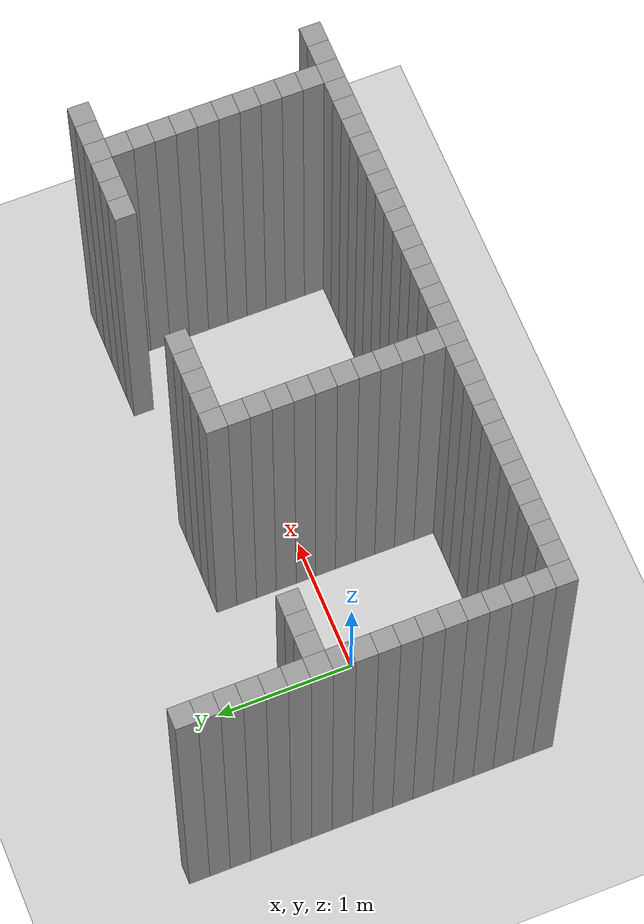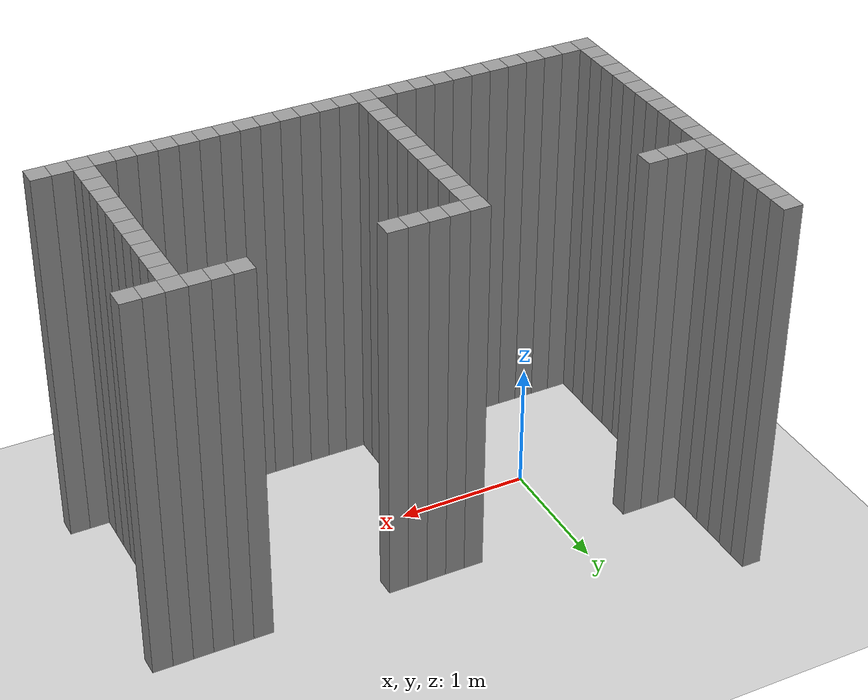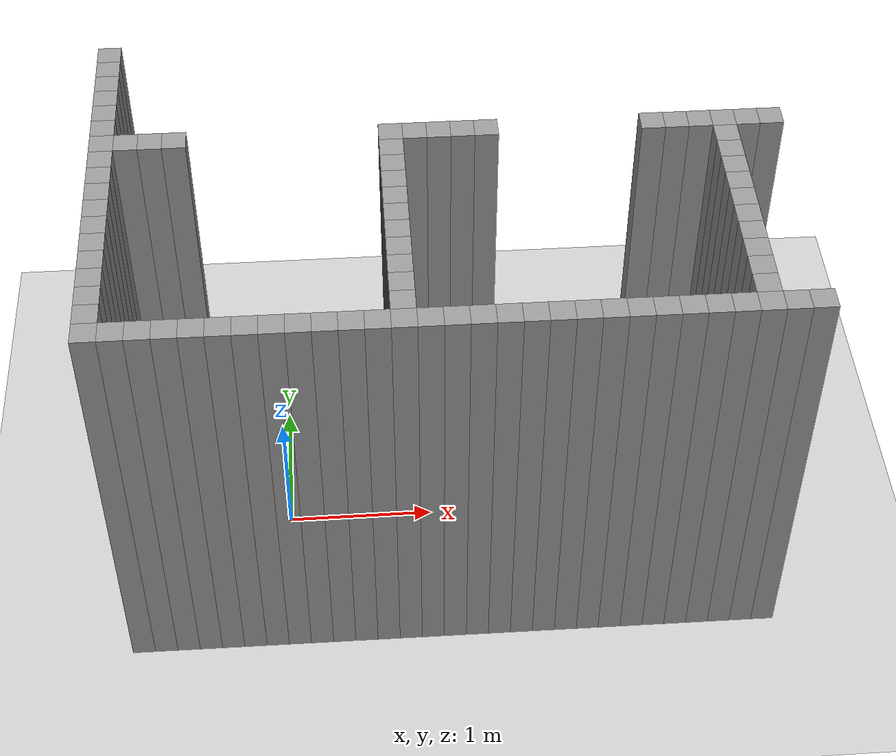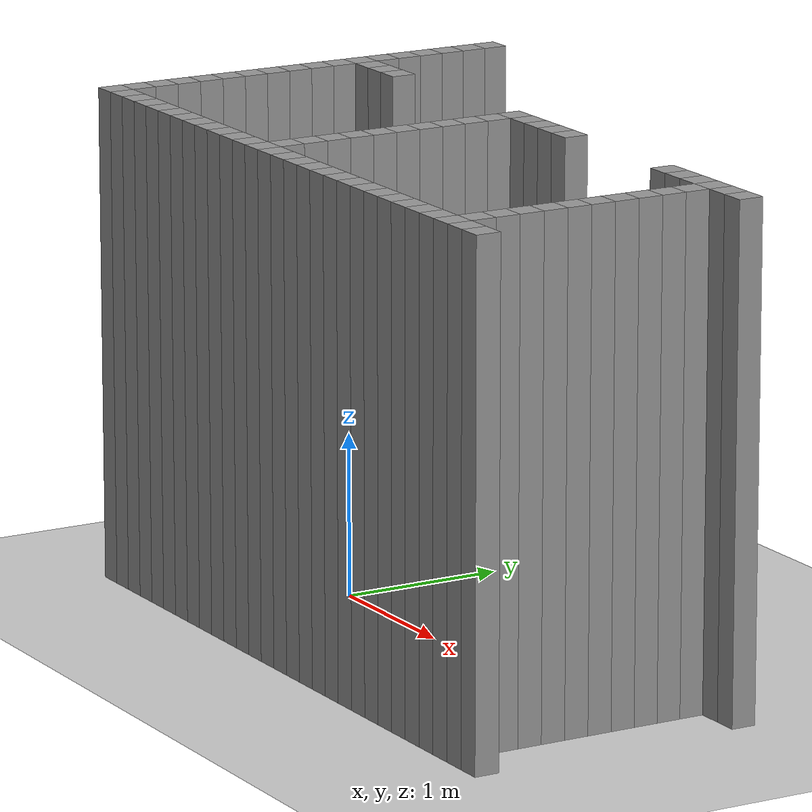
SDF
<sdf version="1.7">
 <world name="default">
  <model name="ground_plane">
   <static>1</static>
   <link name="link">
    <collision name="collision">
     <geometry><plane><normal>0 0 1</normal><size>100 100</size></plane></geometry>
     <surface>
      <contact><collide_bitmask>65535</collide_bitmask></contact>
      <friction><ode><mu>100</mu><mu2>50</mu2></ode></friction>
     </surface>
    </collision>
    <visual name="visual">
     <cast_shadows>0</cast_shadows>
     <geometry><plane><normal>0 0 1</normal><size>100 100</size></plane></geometry>
     <material>
      <script><uri>file://media/materials/scripts/gazebo.material</uri><name>Gazebo/Grey</name></script>
     </material>
    </visual>
   </link>
  </model>
  <model name="image45004">
   <pose>-1 -1 0 0 -0 0</pose>
   <link name="Wall_0">
    <collision name="Wall_0_Collision">
     <geometry><box><size>0.15 0.15 3</size></box></geometry>
     <pose>0 0 1.5 0 -0 0</pose>
    </collision>
    <visual name="Wall_0_Visual">
     <pose>0 0 1.5 0 -0 0</pose>
     <geometry><box><size>0.15 0.15 3</size></box></geometry>
     <material>
      <script><uri>file://media/materials/scripts/gazebo.material</uri><name>Gazebo/Grey</name></script>
      <ambient>1 1 1 1</ambient>
     </material>
     <meta><layer>0</layer></meta>
    </visual>
   </link>
   <link name="Wall_1">
    <collision name="Wall_1_Collision">
     <geometry><box><size>0.15 0.15 3</size></box></geometry>
     <pose>0 0 1.5 0 -0 0</pose>
    </collision>
    <visual name="Wall_1_Visual">
     <pose>0 0 1.5 0 -0 0</pose>
     <geometry><box><size>0.15 0.15 3</size></box></geometry>
     <material>
      <script><uri>file://media/materials/scripts/gazebo.material</uri><name>Gazebo/Grey</name></script>
      <ambient>1 1 1 1</ambient>
     </material>
     <meta><layer>0</layer></meta>
    </visual>
    <pose>0.0 0.15 0 0 -0 0</pose>
   </link>
   <link name="Wall_2">
    <collision name="Wall_2_Collision">
     <geometry><box><size>0.15 0.15 3</size></box></geometry>
     <pose>0 0 1.5 0 -0 0</pose>
    </collision>
    <visual name="Wall_2_Visual">
     <pose>0 0 1.5 0 -0 0</pose>
     <geometry><box><size>0.15 0.15 3</size></box></geometry>
     <material>
      <script><uri>file://media/materials/scripts/gazebo.material</uri><name>Gazebo/Grey</name></script>
      <ambient>1 1 1 1</ambient>
     </material>
     <meta><layer>0</layer></meta>
    </visual>
    <pose>0.0 0.3 0 0 -0 0</pose>
   </link>
   <link name="Wall_3">
    <collision name="Wall_3_Collision">
     <geometry><box><size>0.15 0.15 3</size></box></geometry>
     <pose>0 0 1.5 0 -0 0</pose>
    </collision>
    <visual name="Wall_3_Visual">
     <pose>0 0 1.5 0 -0 0</pose>
     <geometry><box><size>0.15 0.15 3</size></box></geometry>
     <material>
      <script><uri>file://media/materials/scripts/gazebo.material</uri><name>Gazebo/Grey</name></script>
      <ambient>1 1 1 1</ambient>
     </material>
     <meta><layer>0</layer></meta>
    </visual>
    <pose>0.0 0.44999999999999996 0 0 -0 0</pose>
   </link>
   <link name="Wall_4">
    <collision name="Wall_4_Collision">
     <geometry><box><size>0.15 0.15 3</size></box></geometry>
     <pose>0 0 1.5 0 -0 0</pose>
    </collision>
    <visual name="Wall_4_Visual">
     <pose>0 0 1.5 0 -0 0</pose>
     <geometry><box><size>0.15 0.15 3</size></box></geometry>
     <material>
      <script><uri>file://media/materials/scripts/gazebo.material</uri><name>Gazebo/Grey</name></script>
      <ambient>1 1 1 1</ambient>
     </material>
     <meta><layer>0</layer></meta>
    </visual>
    <pose>0.0 0.6 0 0 -0 0</pose>
   </link>
   <link name="Wall_5">
    <collision name="Wall_5_Collision">
     <geometry><box><size>0.15 0.15 3</size></box></geometry>
     <pose>0 0 1.5 0 -0 0</pose>
    </collision>
    <visual name="Wall_5_Visual">
     <pose>0 0 1.5 0 -0 0</pose>
     <geometry><box><size>0.15 0.15 3</size></box></geometry>
     <material>
      <script><uri>file://media/materials/scripts/gazebo.material</uri><name>Gazebo/Grey</name></script>
      <ambient>1 1 1 1</ambient>
     </material>
     <meta><layer>0</layer></meta>
    </visual>
    <pose>0.0 0.75 0 0 -0 0</pose>
   </link>
   <link name="Wall_6">
    <collision name="Wall_6_Collision">
     <geometry><box><size>0.15 0.15 3</size></box></geometry>
     <pose>0 0 1.5 0 -0 0</pose>
    </collision>
    <visual name="Wall_6_Visual">
     <pose>0 0 1.5 0 -0 0</pose>
     <geometry><box><size>0.15 0.15 3</size></box></geometry>
     <material>
      <script><uri>file://media/materials/scripts/gazebo.material</uri><name>Gazebo/Grey</name></script>
      <ambient>1 1 1 1</ambient>
     </material>
     <meta><layer>0</layer></meta>
    </visual>
    <pose>0.0 0.8999999999999999 0 0 -0 0</pose>
   </link>
   <link name="Wall_7">
    <collision name="Wall_7_Collision">
     <geometry><box><size>0.15 0.15 3</size></box></geometry>
     <pose>0 0 1.5 0 -0 0</pose>
    </collision>
    <visual name="Wall_7_Visual">
     <pose>0 0 1.5 0 -0 0</pose>
     <geometry><box><size>0.15 0.15 3</size></box></geometry>
     <material>
      <script><uri>file://media/materials/scripts/gazebo.material</uri><name>Gazebo/Grey</name></script>
      <ambient>1 1 1 1</ambient>
     </material>
     <meta><layer>0</layer></meta>
    </visual>
    <pose>0.0 1.05 0 0 -0 0</pose>
   </link>
   <link name="Wall_8">
    <collision name="Wall_8_Collision">
     <geometry><box><size>0.15 0.15 3</size></box></geometry>
     <pose>0 0 1.5 0 -0 0</pose>
    </collision>
    <visual name="Wall_8_Visual">
     <pose>0 0 1.5 0 -0 0</pose>
     <geometry><box><size>0.15 0.15 3</size></box></geometry>
     <material>
      <script><uri>file://media/materials/scripts/gazebo.material</uri><name>Gazebo/Grey</name></script>
      <ambient>1 1 1 1</ambient>
     </material>
     <meta><layer>0</layer></meta>
    </visual>
    <pose>0.0 1.2 0 0 -0 0</pose>
   </link>
   <link name="Wall_9">
    <collision name="Wall_9_Collision">
     <geometry><box><size>0.15 0.15 3</size></box></geometry>
     <pose>0 0 1.5 0 -0 0</pose>
    </collision>
    <visual name="Wall_9_Visual">
     <pose>0 0 1.5 0 -0 0</pose>
     <geometry><box><size>0.15 0.15 3</size></box></geometry>
     <material>
      <script><uri>file://media/materials/scripts/gazebo.material</uri><name>Gazebo/Grey</name></script>
      <ambient>1 1 1 1</ambient>
     </material>
     <meta><layer>0</layer></meta>
    </visual>
    <pose>0.0 1.3499999999999999 0 0 -0 0</pose>
   </link>
   <link name="Wall_10">
    <collision name="Wall_10_Collision">
     <geometry><box><size>0.15 0.15 3</size></box></geometry>
     <pose>0 0 1.5 0 -0 0</pose>
    </collision>
    <visual name="Wall_10_Visual">
     <pose>0 0 1.5 0 -0 0</pose>
     <geometry><box><size>0.15 0.15 3</size></box></geometry>
     <material>
      <script><uri>file://media/materials/scripts/gazebo.material</uri><name>Gazebo/Grey</name></script>
      <ambient>1 1 1 1</ambient>
     </material>
     <meta><layer>0</layer></meta>
    </visual>
    <pose>0.0 1.5 0 0 -0 0</pose>
   </link>
   <link name="Wall_11">
    <collision name="Wall_11_Collision">
     <geometry><box><size>0.15 0.15 3</size></box></geometry>
     <pose>0 0 1.5 0 -0 0</pose>
    </collision>
    <visual name="Wall_11_Visual">
     <pose>0 0 1.5 0 -0 0</pose>
     <geometry><box><size>0.15 0.15 3</size></box></geometry>
     <material>
      <script><uri>file://media/materials/scripts/gazebo.material</uri><name>Gazebo/Grey</name></script>
      <ambient>1 1 1 1</ambient>
     </material>
     <meta><layer>0</layer></meta>
    </visual>
    <pose>0.0 1.65 0 0 -0 0</pose>
   </link>
   <link name="Wall_12">
    <collision name="Wall_12_Collision">
     <geometry><box><size>0.15 0.15 3</size></box></geometry>
     <pose>0 0 1.5 0 -0 0</pose>
    </collision>
    <visual name="Wall_12_Visual">
     <pose>0 0 1.5 0 -0 0</pose>
     <geometry><box><size>0.15 0.15 3</size></box></geometry>
     <material>
      <script><uri>file://media/materials/scripts/gazebo.material</uri><name>Gazebo/Grey</name></script>
      <ambient>1 1 1 1</ambient>
     </material>
     <meta><layer>0</layer></meta>
    </visual>
    <pose>0.0 1.7999999999999998 0 0 -0 0</pose>
   </link>
   <link name="Wall_13">
    <collision name="Wall_13_Collision">
     <geometry><box><size>0.15 0.15 3</size></box></geometry>
     <pose>0 0 1.5 0 -0 0</pose>
    </collision>
    <visual name="Wall_13_Visual">
     <pose>0 0 1.5 0 -0 0</pose>
     <geometry><box><size>0.15 0.15 3</size></box></geometry>
     <material>
      <script><uri>file://media/materials/scripts/gazebo.material</uri><name>Gazebo/Grey</name></script>
      <ambient>1 1 1 1</ambient>
     </material>
     <meta><layer>0</layer></meta>
    </visual>
    <pose>0.0 1.95 0 0 -0 0</pose>
   </link>
   <link name="Wall_14">
    <collision name="Wall_14_Collision">
     <geometry><box><size>0.15 0.15 3</size></box></geometry>
     <pose>0 0 1.5 0 -0 0</pose>
    </collision>
    <visual name="Wall_14_Visual">
     <pose>0 0 1.5 0 -0 0</pose>
     <geometry><box><size>0.15 0.15 3</size></box></geometry>
     <material>
      <script><uri>file://media/materials/scripts/gazebo.material</uri><name>Gazebo/Grey</name></script>
      <ambient>1 1 1 1</ambient>
     </material>
     <meta><layer>0</layer></meta>
    </visual>
    <pose>0.0 2.1 0 0 -0 0</pose>
   </link>
   <link name="Wall_15">
    <collision name="Wall_15_Collision">
     <geometry><box><size>0.15 0.15 3</size></box></geometry>
     <pose>0 0 1.5 0 -0 0</pose>
    </collision>
    <visual name="Wall_15_Visual">
     <pose>0 0 1.5 0 -0 0</pose>
     <geometry><box><size>0.15 0.15 3</size></box></geometry>
     <material>
      <script><uri>file://media/materials/scripts/gazebo.material</uri><name>Gazebo/Grey</name></script>
      <ambient>1 1 1 1</ambient>
     </material>
     <meta><layer>0</layer></meta>
    </visual>
    <pose>0.0 2.25 0 0 -0 0</pose>
   </link>
   <link name="Wall_16">
    <collision name="Wall_16_Collision">
     <geometry><box><size>0.15 0.15 3</size></box></geometry>
     <pose>0 0 1.5 0 -0 0</pose>
    </collision>
    <visual name="Wall_16_Visual">
     <pose>0 0 1.5 0 -0 0</pose>
     <geometry><box><size>0.15 0.15 3</size></box></geometry>
     <material>
      <script><uri>file://media/materials/scripts/gazebo.material</uri><name>Gazebo/Grey</name></script>
      <ambient>1 1 1 1</ambient>
     </material>
     <meta><layer>0</layer></meta>
    </visual>
    <pose>0.0 2.4 0 0 -0 0</pose>
   </link>
   <link name="Wall_17">
    <collision name="Wall_17_Collision">
     <geometry><box><size>0.15 0.15 3</size></box></geometry>
     <pose>0 0 1.5 0 -0 0</pose>
    </collision>
    <visual name="Wall_17_Visual">
     <pose>0 0 1.5 0 -0 0</pose>
     <geometry><box><size>0.15 0.15 3</size></box></geometry>
     <material>
      <script><uri>file://media/materials/scripts/gazebo.material</uri><name>Gazebo/Grey</name></script>
      <ambient>1 1 1 1</ambient>
     </material>
     <meta><layer>0</layer></meta>
    </visual>
    <pose>0.0 2.55 0 0 -0 0</pose>
   </link>
   <link name="Wall_60">
    <collision name="Wall_60_Collision">
     <geometry><box><size>0.15 0.15 3</size></box></geometry>
     <pose>0 0 1.5 0 -0 0</pose>
    </collision>
    <visual name="Wall_60_Visual">
     <pose>0 0 1.5 0 -0 0</pose>
     <geometry><box><size>0.15 0.15 3</size></box></geometry>
     <material>
      <script><uri>file://media/materials/scripts/gazebo.material</uri><name>Gazebo/Grey</name></script>
      <ambient>1 1 1 1</ambient>
     </material>
     <meta><layer>0</layer></meta>
    </visual>
    <pose>0.15 0.0 0 0 -0 0</pose>
   </link>
   <link name="Wall_61">
    <collision name="Wall_61_Collision">
     <geometry><box><size>0.15 0.15 3</size></box></geometry>
     <pose>0 0 1.5 0 -0 0</pose>
    </collision>
    <visual name="Wall_61_Visual">
     <pose>0 0 1.5 0 -0 0</pose>
     <geometry><box><size>0.15 0.15 3</size></box></geometry>
     <material>
      <script><uri>file://media/materials/scripts/gazebo.material</uri><name>Gazebo/Grey</name></script>
      <ambient>1 1 1 1</ambient>
     </material>
     <meta><layer>0</layer></meta>
    </visual>
    <pose>0.15 1.65 0 0 -0 0</pose>
   </link>
   <link name="Wall_66">
    <collision name="Wall_66_Collision">
     <geometry><box><size>0.15 0.15 3</size></box></geometry>
     <pose>0 0 1.5 0 -0 0</pose>
    </collision>
    <visual name="Wall_66_Visual">
     <pose>0 0 1.5 0 -0 0</pose>
     <geometry><box><size>0.15 0.15 3</size></box></geometry>
     <material>
      <script><uri>file://media/materials/scripts/gazebo.material</uri><name>Gazebo/Grey</name></script>
      <ambient>1 1 1 1</ambient>
     </material>
     <meta><layer>0</layer></meta>
    </visual>
    <pose>0.3 0.0 0 0 -0 0</pose>
   </link>
   <link name="Wall_67">
    <collision name="Wall_67_Collision">
     <geometry><box><size>0.15 0.15 3</size></box></geometry>
     <pose>0 0 1.5 0 -0 0</pose>
    </collision>
    <visual name="Wall_67_Visual">
     <pose>0 0 1.5 0 -0 0</pose>
     <geometry><box><size>0.15 0.15 3</size></box></geometry>
     <material>
      <script><uri>file://media/materials/scripts/gazebo.material</uri><name>Gazebo/Grey</name></script>
      <ambient>1 1 1 1</ambient>
     </material>
     <meta><layer>0</layer></meta>
    </visual>
    <pose>0.3 1.65 0 0 -0 0</pose>
   </link>
   <link name="Wall_71">
    <collision name="Wall_71_Collision">
     <geometry><box><size>0.15 0.15 3</size></box></geometry>
     <pose>0 0 1.5 0 -0 0</pose>
    </collision>
    <visual name="Wall_71_Visual">
     <pose>0 0 1.5 0 -0 0</pose>
     <geometry><box><size>0.15 0.15 3</size></box></geometry>
     <material>
      <script><uri>file://media/materials/scripts/gazebo.material</uri><name>Gazebo/Grey</name></script>
      <ambient>1 1 1 1</ambient>
     </material>
     <meta><layer>0</layer></meta>
    </visual>
    <pose>0.44999999999999996 0.0 0 0 -0 0</pose>
   </link>
   <link name="Wall_72">
    <collision name="Wall_72_Collision">
     <geometry><box><size>0.15 0.15 3</size></box></geometry>
     <pose>0 0 1.5 0 -0 0</pose>
    </collision>
    <visual name="Wall_72_Visual">
     <pose>0 0 1.5 0 -0 0</pose>
     <geometry><box><size>0.15 0.15 3</size></box></geometry>
     <material>
      <script><uri>file://media/materials/scripts/gazebo.material</uri><name>Gazebo/Grey</name></script>
      <ambient>1 1 1 1</ambient>
     </material>
     <meta><layer>0</layer></meta>
    </visual>
    <pose>0.44999999999999996 1.65 0 0 -0 0</pose>
   </link>
   <link name="Wall_76">
    <collision name="Wall_76_Collision">
     <geometry><box><size>0.15 0.15 3</size></box></geometry>
     <pose>0 0 1.5 0 -0 0</pose>
    </collision>
    <visual name="Wall_76_Visual">
     <pose>0 0 1.5 0 -0 0</pose>
     <geometry><box><size>0.15 0.15 3</size></box></geometry>
     <material>
      <script><uri>file://media/materials/scripts/gazebo.material</uri><name>Gazebo/Grey</name></script>
      <ambient>1 1 1 1</ambient>
     </material>
     <meta><layer>0</layer></meta>
    </visual>
    <pose>0.6 0.0 0 0 -0 0</pose>
   </link>
   <link name="Wall_80">
    <collision name="Wall_80_Collision">
     <geometry><box><size>0.15 0.15 3</size></box></geometry>
     <pose>0 0 1.5 0 -0 0</pose>
    </collision>
    <visual name="Wall_80_Visual">
     <pose>0 0 1.5 0 -0 0</pose>
     <geometry><box><size>0.15 0.15 3</size></box></geometry>
     <material>
      <script><uri>file://media/materials/scripts/gazebo.material</uri><name>Gazebo/Grey</name></script>
      <ambient>1 1 1 1</ambient>
     </material>
     <meta><layer>0</layer></meta>
    </visual>
    <pose>0.75 0.0 0 0 -0 0</pose>
   </link>
   <link name="Wall_84">
    <collision name="Wall_84_Collision">
     <geometry><box><size>0.15 0.15 3</size></box></geometry>
     <pose>0 0 1.5 0 -0 0</pose>
    </collision>
    <visual name="Wall_84_Visual">
     <pose>0 0 1.5 0 -0 0</pose>
     <geometry><box><size>0.15 0.15 3</size></box></geometry>
     <material>
      <script><uri>file://media/materials/scripts/gazebo.material</uri><name>Gazebo/Grey</name></script>
      <ambient>1 1 1 1</ambient>
     </material>
     <meta><layer>0</layer></meta>
    </visual>
    <pose>0.8999999999999999 0.0 0 0 -0 0</pose>
   </link>
   <link name="Wall_88">
    <collision name="Wall_88_Collision">
     <geometry><box><size>0.15 0.15 3</size></box></geometry>
     <pose>0 0 1.5 0 -0 0</pose>
    </collision>
    <visual name="Wall_88_Visual">
     <pose>0 0 1.5 0 -0 0</pose>
     <geometry><box><size>0.15 0.15 3</size></box></geometry>
     <material>
      <script><uri>file://media/materials/scripts/gazebo.material</uri><name>Gazebo/Grey</name></script>
      <ambient>1 1 1 1</ambient>
     </material>
     <meta><layer>0</layer></meta>
    </visual>
    <pose>1.05 0.0 0 0 -0 0</pose>
   </link>
   <link name="Wall_92">
    <collision name="Wall_92_Collision">
     <geometry><box><size>0.15 0.15 3</size></box></geometry>
     <pose>0 0 1.5 0 -0 0</pose>
    </collision>
    <visual name="Wall_92_Visual">
     <pose>0 0 1.5 0 -0 0</pose>
     <geometry><box><size>0.15 0.15 3</size></box></geometry>
     <material>
      <script><uri>file://media/materials/scripts/gazebo.material</uri><name>Gazebo/Grey</name></script>
      <ambient>1 1 1 1</ambient>
     </material>
     <meta><layer>0</layer></meta>
    </visual>
    <pose>1.2 0.0 0 0 -0 0</pose>
   </link>
   <link name="Wall_96">
    <collision name="Wall_96_Collision">
     <geometry><box><size>0.15 0.15 3</size></box></geometry>
     <pose>0 0 1.5 0 -0 0</pose>
    </collision>
    <visual name="Wall_96_Visual">
     <pose>0 0 1.5 0 -0 0</pose>
     <geometry><box><size>0.15 0.15 3</size></box></geometry>
     <material>
      <script><uri>file://media/materials/scripts/gazebo.material</uri><name>Gazebo/Grey</name></script>
      <ambient>1 1 1 1</ambient>
     </material>
     <meta><layer>0</layer></meta>
    </visual>
    <pose>1.3499999999999999 0.0 0 0 -0 0</pose>
   </link>
   <link name="Wall_100">
    <collision name="Wall_100_Collision">
     <geometry><box><size>0.15 0.15 3</size></box></geometry>
     <pose>0 0 1.5 0 -0 0</pose>
    </collision>
    <visual name="Wall_100_Visual">
     <pose>0 0 1.5 0 -0 0</pose>
     <geometry><box><size>0.15 0.15 3</size></box></geometry>
     <material>
      <script><uri>file://media/materials/scripts/gazebo.material</uri><name>Gazebo/Grey</name></script>
      <ambient>1 1 1 1</ambient>
     </material>
     <meta><layer>0</layer></meta>
    </visual>
    <pose>1.5 0.0 0 0 -0 0</pose>
   </link>
   <link name="Wall_105">
    <collision name="Wall_105_Collision">
     <geometry><box><size>0.15 0.15 3</size></box></geometry>
     <pose>0 0 1.5 0 -0 0</pose>
    </collision>
    <visual name="Wall_105_Visual">
     <pose>0 0 1.5 0 -0 0</pose>
     <geometry><box><size>0.15 0.15 3</size></box></geometry>
     <material>
      <script><uri>file://media/materials/scripts/gazebo.material</uri><name>Gazebo/Grey</name></script>
      <ambient>1 1 1 1</ambient>
     </material>
     <meta><layer>0</layer></meta>
    </visual>
    <pose>1.65 0.0 0 0 -0 0</pose>
   </link>
   <link name="Wall_110">
    <collision name="Wall_110_Collision">
     <geometry><box><size>0.15 0.15 3</size></box></geometry>
     <pose>0 0 1.5 0 -0 0</pose>
    </collision>
    <visual name="Wall_110_Visual">
     <pose>0 0 1.5 0 -0 0</pose>
     <geometry><box><size>0.15 0.15 3</size></box></geometry>
     <material>
      <script><uri>file://media/materials/scripts/gazebo.material</uri><name>Gazebo/Grey</name></script>
      <ambient>1 1 1 1</ambient>
     </material>
     <meta><layer>0</layer></meta>
    </visual>
    <pose>1.7999999999999998 0.0 0 0 -0 0</pose>
   </link>
   <link name="Wall_111">
    <collision name="Wall_111_Collision">
     <geometry><box><size>0.15 0.15 3</size></box></geometry>
     <pose>0 0 1.5 0 -0 0</pose>
    </collision>
    <visual name="Wall_111_Visual">
     <pose>0 0 1.5 0 -0 0</pose>
     <geometry><box><size>0.15 0.15 3</size></box></geometry>
     <material>
      <script><uri>file://media/materials/scripts/gazebo.material</uri><name>Gazebo/Grey</name></script>
      <ambient>1 1 1 1</ambient>
     </material>
     <meta><layer>0</layer></meta>
    </visual>
    <pose>1.7999999999999998 0.15 0 0 -0 0</pose>
   </link>
   <link name="Wall_112">
    <collision name="Wall_112_Collision">
     <geometry><box><size>0.15 0.15 3</size></box></geometry>
     <pose>0 0 1.5 0 -0 0</pose>
    </collision>
    <visual name="Wall_112_Visual">
     <pose>0 0 1.5 0 -0 0</pose>
     <geometry><box><size>0.15 0.15 3</size></box></geometry>
     <material>
      <script><uri>file://media/materials/scripts/gazebo.material</uri><name>Gazebo/Grey</name></script>
      <ambient>1 1 1 1</ambient>
     </material>
     <meta><layer>0</layer></meta>
    </visual>
    <pose>1.7999999999999998 0.3 0 0 -0 0</pose>
   </link>
   <link name="Wall_113">
    <collision name="Wall_113_Collision">
     <geometry><box><size>0.15 0.15 3</size></box></geometry>
     <pose>0 0 1.5 0 -0 0</pose>
    </collision>
    <visual name="Wall_113_Visual">
     <pose>0 0 1.5 0 -0 0</pose>
     <geometry><box><size>0.15 0.15 3</size></box></geometry>
     <material>
      <script><uri>file://media/materials/scripts/gazebo.material</uri><name>Gazebo/Grey</name></script>
      <ambient>1 1 1 1</ambient>
     </material>
     <meta><layer>0</layer></meta>
    </visual>
    <pose>1.7999999999999998 0.44999999999999996 0 0 -0 0</pose>
   </link>
   <link name="Wall_114">
    <collision name="Wall_114_Collision">
     <geometry><box><size>0.15 0.15 3</size></box></geometry>
     <pose>0 0 1.5 0 -0 0</pose>
    </collision>
    <visual name="Wall_114_Visual">
     <pose>0 0 1.5 0 -0 0</pose>
     <geometry><box><size>0.15 0.15 3</size></box></geometry>
     <material>
      <script><uri>file://media/materials/scripts/gazebo.material</uri><name>Gazebo/Grey</name></script>
      <ambient>1 1 1 1</ambient>
     </material>
     <meta><layer>0</layer></meta>
    </visual>
    <pose>1.7999999999999998 0.6 0 0 -0 0</pose>
   </link>
   <link name="Wall_115">
    <collision name="Wall_115_Collision">
     <geometry><box><size>0.15 0.15 3</size></box></geometry>
     <pose>0 0 1.5 0 -0 0</pose>
    </collision>
    <visual name="Wall_115_Visual">
     <pose>0 0 1.5 0 -0 0</pose>
     <geometry><box><size>0.15 0.15 3</size></box></geometry>
     <material>
      <script><uri>file://media/materials/scripts/gazebo.material</uri><name>Gazebo/Grey</name></script>
      <ambient>1 1 1 1</ambient>
     </material>
     <meta><layer>0</layer></meta>
    </visual>
    <pose>1.7999999999999998 0.75 0 0 -0 0</pose>
   </link>
   <link name="Wall_116">
    <collision name="Wall_116_Collision">
     <geometry><box><size>0.15 0.15 3</size></box></geometry>
     <pose>0 0 1.5 0 -0 0</pose>
    </collision>
    <visual name="Wall_116_Visual">
     <pose>0 0 1.5 0 -0 0</pose>
     <geometry><box><size>0.15 0.15 3</size></box></geometry>
     <material>
      <script><uri>file://media/materials/scripts/gazebo.material</uri><name>Gazebo/Grey</name></script>
      <ambient>1 1 1 1</ambient>
     </material>
     <meta><layer>0</layer></meta>
    </visual>
    <pose>1.7999999999999998 0.8999999999999999 0 0 -0 0</pose>
   </link>
   <link name="Wall_117">
    <collision name="Wall_117_Collision">
     <geometry><box><size>0.15 0.15 3</size></box></geometry>
     <pose>0 0 1.5 0 -0 0</pose>
    </collision>
    <visual name="Wall_117_Visual">
     <pose>0 0 1.5 0 -0 0</pose>
     <geometry><box><size>0.15 0.15 3</size></box></geometry>
     <material>
      <script><uri>file://media/materials/scripts/gazebo.material</uri><name>Gazebo/Grey</name></script>
      <ambient>1 1 1 1</ambient>
     </material>
     <meta><layer>0</layer></meta>
    </visual>
    <pose>1.7999999999999998 1.05 0 0 -0 0</pose>
   </link>
   <link name="Wall_118">
    <collision name="Wall_118_Collision">
     <geometry><box><size>0.15 0.15 3</size></box></geometry>
     <pose>0 0 1.5 0 -0 0</pose>
    </collision>
    <visual name="Wall_118_Visual">
     <pose>0 0 1.5 0 -0 0</pose>
     <geometry><box><size>0.15 0.15 3</size></box></geometry>
     <material>
      <script><uri>file://media/materials/scripts/gazebo.material</uri><name>Gazebo/Grey</name></script>
      <ambient>1 1 1 1</ambient>
     </material>
     <meta><layer>0</layer></meta>
    </visual>
    <pose>1.7999999999999998 1.2 0 0 -0 0</pose>
   </link>
   <link name="Wall_119">
    <collision name="Wall_119_Collision">
     <geometry><box><size>0.15 0.15 3</size></box></geometry>
     <pose>0 0 1.5 0 -0 0</pose>
    </collision>
    <visual name="Wall_119_Visual">
     <pose>0 0 1.5 0 -0 0</pose>
     <geometry><box><size>0.15 0.15 3</size></box></geometry>
     <material>
      <script><uri>file://media/materials/scripts/gazebo.material</uri><name>Gazebo/Grey</name></script>
      <ambient>1 1 1 1</ambient>
     </material>
     <meta><layer>0</layer></meta>
    </visual>
    <pose>1.7999999999999998 1.3499999999999999 0 0 -0 0</pose>
   </link>
   <link name="Wall_120">
    <collision name="Wall_120_Collision">
     <geometry><box><size>0.15 0.15 3</size></box></geometry>
     <pose>0 0 1.5 0 -0 0</pose>
    </collision>
    <visual name="Wall_120_Visual">
     <pose>0 0 1.5 0 -0 0</pose>
     <geometry><box><size>0.15 0.15 3</size></box></geometry>
     <material>
      <script><uri>file://media/materials/scripts/gazebo.material</uri><name>Gazebo/Grey</name></script>
      <ambient>1 1 1 1</ambient>
     </material>
     <meta><layer>0</layer></meta>
    </visual>
    <pose>1.7999999999999998 1.5 0 0 -0 0</pose>
   </link>
   <link name="Wall_121">
    <collision name="Wall_121_Collision">
     <geometry><box><size>0.15 0.15 3</size></box></geometry>
     <pose>0 0 1.5 0 -0 0</pose>
    </collision>
    <visual name="Wall_121_Visual">
     <pose>0 0 1.5 0 -0 0</pose>
     <geometry><box><size>0.15 0.15 3</size></box></geometry>
     <material>
      <script><uri>file://media/materials/scripts/gazebo.material</uri><name>Gazebo/Grey</name></script>
      <ambient>1 1 1 1</ambient>
     </material>
     <meta><layer>0</layer></meta>
    </visual>
    <pose>1.7999999999999998 1.65 0 0 -0 0</pose>
   </link>
   <link name="Wall_142">
    <collision name="Wall_142_Collision">
     <geometry><box><size>0.15 0.15 3</size></box></geometry>
     <pose>0 0 1.5 0 -0 0</pose>
    </collision>
    <visual name="Wall_142_Visual">
     <pose>0 0 1.5 0 -0 0</pose>
     <geometry><box><size>0.15 0.15 3</size></box></geometry>
     <material>
      <script><uri>file://media/materials/scripts/gazebo.material</uri><name>Gazebo/Grey</name></script>
      <ambient>1 1 1 1</ambient>
     </material>
     <meta><layer>0</layer></meta>
    </visual>
    <pose>1.95 0.0 0 0 -0 0</pose>
   </link>
   <link name="Wall_143">
    <collision name="Wall_143_Collision">
     <geometry><box><size>0.15 0.15 3</size></box></geometry>
     <pose>0 0 1.5 0 -0 0</pose>
    </collision>
    <visual name="Wall_143_Visual">
     <pose>0 0 1.5 0 -0 0</pose>
     <geometry><box><size>0.15 0.15 3</size></box></geometry>
     <material>
      <script><uri>file://media/materials/scripts/gazebo.material</uri><name>Gazebo/Grey</name></script>
      <ambient>1 1 1 1</ambient>
     </material>
     <meta><layer>0</layer></meta>
    </visual>
    <pose>1.95 1.65 0 0 -0 0</pose>
   </link>
   <link name="Wall_151">
    <collision name="Wall_151_Collision">
     <geometry><box><size>0.15 0.15 3</size></box></geometry>
     <pose>0 0 1.5 0 -0 0</pose>
    </collision>
    <visual name="Wall_151_Visual">
     <pose>0 0 1.5 0 -0 0</pose>
     <geometry><box><size>0.15 0.15 3</size></box></geometry>
     <material>
      <script><uri>file://media/materials/scripts/gazebo.material</uri><name>Gazebo/Grey</name></script>
      <ambient>1 1 1 1</ambient>
     </material>
     <meta><layer>0</layer></meta>
    </visual>
    <pose>2.1 0.0 0 0 -0 0</pose>
   </link>
   <link name="Wall_152">
    <collision name="Wall_152_Collision">
     <geometry><box><size>0.15 0.15 3</size></box></geometry>
     <pose>0 0 1.5 0 -0 0</pose>
    </collision>
    <visual name="Wall_152_Visual">
     <pose>0 0 1.5 0 -0 0</pose>
     <geometry><box><size>0.15 0.15 3</size></box></geometry>
     <material>
      <script><uri>file://media/materials/scripts/gazebo.material</uri><name>Gazebo/Grey</name></script>
      <ambient>1 1 1 1</ambient>
     </material>
     <meta><layer>0</layer></meta>
    </visual>
    <pose>2.1 1.65 0 0 -0 0</pose>
   </link>
   <link name="Wall_155">
    <collision name="Wall_155_Collision">
     <geometry><box><size>0.15 0.15 3</size></box></geometry>
     <pose>0 0 1.5 0 -0 0</pose>
    </collision>
    <visual name="Wall_155_Visual">
     <pose>0 0 1.5 0 -0 0</pose>
     <geometry><box><size>0.15 0.15 3</size></box></geometry>
     <material>
      <script><uri>file://media/materials/scripts/gazebo.material</uri><name>Gazebo/Grey</name></script>
      <ambient>1 1 1 1</ambient>
     </material>
     <meta><layer>0</layer></meta>
    </visual>
    <pose>2.25 0.0 0 0 -0 0</pose>
   </link>
   <link name="Wall_156">
    <collision name="Wall_156_Collision">
     <geometry><box><size>0.15 0.15 3</size></box></geometry>
     <pose>0 0 1.5 0 -0 0</pose>
    </collision>
    <visual name="Wall_156_Visual">
     <pose>0 0 1.5 0 -0 0</pose>
     <geometry><box><size>0.15 0.15 3</size></box></geometry>
     <material>
      <script><uri>file://media/materials/scripts/gazebo.material</uri><name>Gazebo/Grey</name></script>
      <ambient>1 1 1 1</ambient>
     </material>
     <meta><layer>0</layer></meta>
    </visual>
    <pose>2.25 1.65 0 0 -0 0</pose>
   </link>
   <link name="Wall_159">
    <collision name="Wall_159_Collision">
     <geometry><box><size>0.15 0.15 3</size></box></geometry>
     <pose>0 0 1.5 0 -0 0</pose>
    </collision>
    <visual name="Wall_159_Visual">
     <pose>0 0 1.5 0 -0 0</pose>
     <geometry><box><size>0.15 0.15 3</size></box></geometry>
     <material>
      <script><uri>file://media/materials/scripts/gazebo.material</uri><name>Gazebo/Grey</name></script>
      <ambient>1 1 1 1</ambient>
     </material>
     <meta><layer>0</layer></meta>
    </visual>
    <pose>2.4 0.0 0 0 -0 0</pose>
   </link>
   <link name="Wall_160">
    <collision name="Wall_160_Collision">
     <geometry><box><size>0.15 0.15 3</size></box></geometry>
     <pose>0 0 1.5 0 -0 0</pose>
    </collision>
    <visual name="Wall_160_Visual">
     <pose>0 0 1.5 0 -0 0</pose>
     <geometry><box><size>0.15 0.15 3</size></box></geometry>
     <material>
      <script><uri>file://media/materials/scripts/gazebo.material</uri><name>Gazebo/Grey</name></script>
      <ambient>1 1 1 1</ambient>
     </material>
     <meta><layer>0</layer></meta>
    </visual>
    <pose>2.4 1.65 0 0 -0 0</pose>
   </link>
   <link name="Wall_162">
    <collision name="Wall_162_Collision">
     <geometry><box><size>0.15 0.15 3</size></box></geometry>
     <pose>0 0 1.5 0 -0 0</pose>
    </collision>
    <visual name="Wall_162_Visual">
     <pose>0 0 1.5 0 -0 0</pose>
     <geometry><box><size>0.15 0.15 3</size></box></geometry>
     <material>
      <script><uri>file://media/materials/scripts/gazebo.material</uri><name>Gazebo/Grey</name></script>
      <ambient>1 1 1 1</ambient>
     </material>
     <meta><layer>0</layer></meta>
    </visual>
    <pose>2.55 0.0 0 0 -0 0</pose>
   </link>
   <link name="Wall_164">
    <collision name="Wall_164_Collision">
     <geometry><box><size>0.15 0.15 3</size></box></geometry>
     <pose>0 0 1.5 0 -0 0</pose>
    </collision>
    <visual name="Wall_164_Visual">
     <pose>0 0 1.5 0 -0 0</pose>
     <geometry><box><size>0.15 0.15 3</size></box></geometry>
     <material>
      <script><uri>file://media/materials/scripts/gazebo.material</uri><name>Gazebo/Grey</name></script>
      <ambient>1 1 1 1</ambient>
     </material>
     <meta><layer>0</layer></meta>
    </visual>
    <pose>2.6999999999999997 0.0 0 0 -0 0</pose>
   </link>
   <link name="Wall_166">
    <collision name="Wall_166_Collision">
     <geometry><box><size>0.15 0.15 3</size></box></geometry>
     <pose>0 0 1.5 0 -0 0</pose>
    </collision>
    <visual name="Wall_166_Visual">
     <pose>0 0 1.5 0 -0 0</pose>
     <geometry><box><size>0.15 0.15 3</size></box></geometry>
     <material>
      <script><uri>file://media/materials/scripts/gazebo.material</uri><name>Gazebo/Grey</name></script>
      <ambient>1 1 1 1</ambient>
     </material>
     <meta><layer>0</layer></meta>
    </visual>
    <pose>2.85 0.0 0 0 -0 0</pose>
   </link>
   <link name="Wall_168">
    <collision name="Wall_168_Collision">
     <geometry><box><size>0.15 0.15 3</size></box></geometry>
     <pose>0 0 1.5 0 -0 0</pose>
    </collision>
    <visual name="Wall_168_Visual">
     <pose>0 0 1.5 0 -0 0</pose>
     <geometry><box><size>0.15 0.15 3</size></box></geometry>
     <material>
      <script><uri>file://media/materials/scripts/gazebo.material</uri><name>Gazebo/Grey</name></script>
      <ambient>1 1 1 1</ambient>
     </material>
     <meta><layer>0</layer></meta>
    </visual>
    <pose>3.0 0.0 0 0 -0 0</pose>
   </link>
   <link name="Wall_170">
    <collision name="Wall_170_Collision">
     <geometry><box><size>0.15 0.15 3</size></box></geometry>
     <pose>0 0 1.5 0 -0 0</pose>
    </collision>
    <visual name="Wall_170_Visual">
     <pose>0 0 1.5 0 -0 0</pose>
     <geometry><box><size>0.15 0.15 3</size></box></geometry>
     <material>
      <script><uri>file://media/materials/scripts/gazebo.material</uri><name>Gazebo/Grey</name></script>
      <ambient>1 1 1 1</ambient>
     </material>
     <meta><layer>0</layer></meta>
    </visual>
    <pose>3.15 0.0 0 0 -0 0</pose>
   </link>
   <link name="Wall_172">
    <collision name="Wall_172_Collision">
     <geometry><box><size>0.15 0.15 3</size></box></geometry>
     <pose>0 0 1.5 0 -0 0</pose>
    </collision>
    <visual name="Wall_172_Visual">
     <pose>0 0 1.5 0 -0 0</pose>
     <geometry><box><size>0.15 0.15 3</size></box></geometry>
     <material>
      <script><uri>file://media/materials/scripts/gazebo.material</uri><name>Gazebo/Grey</name></script>
      <ambient>1 1 1 1</ambient>
     </material>
     <meta><layer>0</layer></meta>
    </visual>
    <pose>3.3 0.0 0 0 -0 0</pose>
   </link>
   <link name="Wall_174">
    <collision name="Wall_174_Collision">
     <geometry><box><size>0.15 0.15 3</size></box></geometry>
     <pose>0 0 1.5 0 -0 0</pose>
    </collision>
    <visual name="Wall_174_Visual">
     <pose>0 0 1.5 0 -0 0</pose>
     <geometry><box><size>0.15 0.15 3</size></box></geometry>
     <material>
      <script><uri>file://media/materials/scripts/gazebo.material</uri><name>Gazebo/Grey</name></script>
      <ambient>1 1 1 1</ambient>
     </material>
     <meta><layer>0</layer></meta>
    </visual>
    <pose>3.4499999999999997 0.0 0 0 -0 0</pose>
   </link>
   <link name="Wall_175">
    <collision name="Wall_175_Collision">
     <geometry><box><size>0.15 0.15 3</size></box></geometry>
     <pose>0 0 1.5 0 -0 0</pose>
    </collision>
    <visual name="Wall_175_Visual">
     <pose>0 0 1.5 0 -0 0</pose>
     <geometry><box><size>0.15 0.15 3</size></box></geometry>
     <material>
      <script><uri>file://media/materials/scripts/gazebo.material</uri><name>Gazebo/Grey</name></script>
      <ambient>1 1 1 1</ambient>
     </material>
     <meta><layer>0</layer></meta>
    </visual>
    <pose>3.4499999999999997 1.65 0 0 -0 0</pose>
   </link>
   <link name="Wall_177">
    <collision name="Wall_177_Collision">
     <geometry><box><size>0.15 0.15 3</size></box></geometry>
     <pose>0 0 1.5 0 -0 0</pose>
    </collision>
    <visual name="Wall_177_Visual">
     <pose>0 0 1.5 0 -0 0</pose>
     <geometry><box><size>0.15 0.15 3</size></box></geometry>
     <material>
      <script><uri>file://media/materials/scripts/gazebo.material</uri><name>Gazebo/Grey</name></script>
      <ambient>1 1 1 1</ambient>
     </material>
     <meta><layer>0</layer></meta>
    </visual>
    <pose>3.5999999999999996 0.0 0 0 -0 0</pose>
   </link>
   <link name="Wall_178">
    <collision name="Wall_178_Collision">
     <geometry><box><size>0.15 0.15 3</size></box></geometry>
     <pose>0 0 1.5 0 -0 0</pose>
    </collision>
    <visual name="Wall_178_Visual">
     <pose>0 0 1.5 0 -0 0</pose>
     <geometry><box><size>0.15 0.15 3</size></box></geometry>
     <material>
      <script><uri>file://media/materials/scripts/gazebo.material</uri><name>Gazebo/Grey</name></script>
      <ambient>1 1 1 1</ambient>
     </material>
     <meta><layer>0</layer></meta>
    </visual>
    <pose>3.5999999999999996 1.65 0 0 -0 0</pose>
   </link>
   <link name="Wall_192">
    <collision name="Wall_192_Collision">
     <geometry><box><size>0.15 0.15 3</size></box></geometry>
     <pose>0 0 1.5 0 -0 0</pose>
    </collision>
    <visual name="Wall_192_Visual">
     <pose>0 0 1.5 0 -0 0</pose>
     <geometry><box><size>0.15 0.15 3</size></box></geometry>
     <material>
      <script><uri>file://media/materials/scripts/gazebo.material</uri><name>Gazebo/Grey</name></script>
      <ambient>1 1 1 1</ambient>
     </material>
     <meta><layer>0</layer></meta>
    </visual>
    <pose>3.75 0.0 0 0 -0 0</pose>
   </link>
   <link name="Wall_193">
    <collision name="Wall_193_Collision">
     <geometry><box><size>0.15 0.15 3</size></box></geometry>
     <pose>0 0 1.5 0 -0 0</pose>
    </collision>
    <visual name="Wall_193_Visual">
     <pose>0 0 1.5 0 -0 0</pose>
     <geometry><box><size>0.15 0.15 3</size></box></geometry>
     <material>
      <script><uri>file://media/materials/scripts/gazebo.material</uri><name>Gazebo/Grey</name></script>
      <ambient>1 1 1 1</ambient>
     </material>
     <meta><layer>0</layer></meta>
    </visual>
    <pose>3.75 1.65 0 0 -0 0</pose>
   </link>
   <link name="Wall_198">
    <collision name="Wall_198_Collision">
     <geometry><box><size>0.15 0.15 3</size></box></geometry>
     <pose>0 0 1.5 0 -0 0</pose>
    </collision>
    <visual name="Wall_198_Visual">
     <pose>0 0 1.5 0 -0 0</pose>
     <geometry><box><size>0.15 0.15 3</size></box></geometry>
     <material>
      <script><uri>file://media/materials/scripts/gazebo.material</uri><name>Gazebo/Grey</name></script>
      <ambient>1 1 1 1</ambient>
     </material>
     <meta><layer>0</layer></meta>
    </visual>
    <pose>3.9 0.0 0 0 -0 0</pose>
   </link>
   <link name="Wall_199">
    <collision name="Wall_199_Collision">
     <geometry><box><size>0.15 0.15 3</size></box></geometry>
     <pose>0 0 1.5 0 -0 0</pose>
    </collision>
    <visual name="Wall_199_Visual">
     <pose>0 0 1.5 0 -0 0</pose>
     <geometry><box><size>0.15 0.15 3</size></box></geometry>
     <material>
      <script><uri>file://media/materials/scripts/gazebo.material</uri><name>Gazebo/Grey</name></script>
      <ambient>1 1 1 1</ambient>
     </material>
     <meta><layer>0</layer></meta>
    </visual>
    <pose>3.9 0.15 0 0 -0 0</pose>
   </link>
   <link name="Wall_200">
    <collision name="Wall_200_Collision">
     <geometry><box><size>0.15 0.15 3</size></box></geometry>
     <pose>0 0 1.5 0 -0 0</pose>
    </collision>
    <visual name="Wall_200_Visual">
     <pose>0 0 1.5 0 -0 0</pose>
     <geometry><box><size>0.15 0.15 3</size></box></geometry>
     <material>
      <script><uri>file://media/materials/scripts/gazebo.material</uri><name>Gazebo/Grey</name></script>
      <ambient>1 1 1 1</ambient>
     </material>
     <meta><layer>0</layer></meta>
    </visual>
    <pose>3.9 0.3 0 0 -0 0</pose>
   </link>
   <link name="Wall_201">
    <collision name="Wall_201_Collision">
     <geometry><box><size>0.15 0.15 3</size></box></geometry>
     <pose>0 0 1.5 0 -0 0</pose>
    </collision>
    <visual name="Wall_201_Visual">
     <pose>0 0 1.5 0 -0 0</pose>
     <geometry><box><size>0.15 0.15 3</size></box></geometry>
     <material>
      <script><uri>file://media/materials/scripts/gazebo.material</uri><name>Gazebo/Grey</name></script>
      <ambient>1 1 1 1</ambient>
     </material>
     <meta><layer>0</layer></meta>
    </visual>
    <pose>3.9 0.44999999999999996 0 0 -0 0</pose>
   </link>
   <link name="Wall_202">
    <collision name="Wall_202_Collision">
     <geometry><box><size>0.15 0.15 3</size></box></geometry>
     <pose>0 0 1.5 0 -0 0</pose>
    </collision>
    <visual name="Wall_202_Visual">
     <pose>0 0 1.5 0 -0 0</pose>
     <geometry><box><size>0.15 0.15 3</size></box></geometry>
     <material>
      <script><uri>file://media/materials/scripts/gazebo.material</uri><name>Gazebo/Grey</name></script>
      <ambient>1 1 1 1</ambient>
     </material>
     <meta><layer>0</layer></meta>
    </visual>
    <pose>3.9 0.6 0 0 -0 0</pose>
   </link>
   <link name="Wall_203">
    <collision name="Wall_203_Collision">
     <geometry><box><size>0.15 0.15 3</size></box></geometry>
     <pose>0 0 1.5 0 -0 0</pose>
    </collision>
    <visual name="Wall_203_Visual">
     <pose>0 0 1.5 0 -0 0</pose>
     <geometry><box><size>0.15 0.15 3</size></box></geometry>
     <material>
      <script><uri>file://media/materials/scripts/gazebo.material</uri><name>Gazebo/Grey</name></script>
      <ambient>1 1 1 1</ambient>
     </material>
     <meta><layer>0</layer></meta>
    </visual>
    <pose>3.9 0.75 0 0 -0 0</pose>
   </link>
   <link name="Wall_204">
    <collision name="Wall_204_Collision">
     <geometry><box><size>0.15 0.15 3</size></box></geometry>
     <pose>0 0 1.5 0 -0 0</pose>
    </collision>
    <visual name="Wall_204_Visual">
     <pose>0 0 1.5 0 -0 0</pose>
     <geometry><box><size>0.15 0.15 3</size></box></geometry>
     <material>
      <script><uri>file://media/materials/scripts/gazebo.material</uri><name>Gazebo/Grey</name></script>
      <ambient>1 1 1 1</ambient>
     </material>
     <meta><layer>0</layer></meta>
    </visual>
    <pose>3.9 0.8999999999999999 0 0 -0 0</pose>
   </link>
   <link name="Wall_205">
    <collision name="Wall_205_Collision">
     <geometry><box><size>0.15 0.15 3</size></box></geometry>
     <pose>0 0 1.5 0 -0 0</pose>
    </collision>
    <visual name="Wall_205_Visual">
     <pose>0 0 1.5 0 -0 0</pose>
     <geometry><box><size>0.15 0.15 3</size></box></geometry>
     <material>
      <script><uri>file://media/materials/scripts/gazebo.material</uri><name>Gazebo/Grey</name></script>
      <ambient>1 1 1 1</ambient>
     </material>
     <meta><layer>0</layer></meta>
    </visual>
    <pose>3.9 1.05 0 0 -0 0</pose>
   </link>
   <link name="Wall_206">
    <collision name="Wall_206_Collision">
     <geometry><box><size>0.15 0.15 3</size></box></geometry>
     <pose>0 0 1.5 0 -0 0</pose>
    </collision>
    <visual name="Wall_206_Visual">
     <pose>0 0 1.5 0 -0 0</pose>
     <geometry><box><size>0.15 0.15 3</size></box></geometry>
     <material>
      <script><uri>file://media/materials/scripts/gazebo.material</uri><name>Gazebo/Grey</name></script>
      <ambient>1 1 1 1</ambient>
     </material>
     <meta><layer>0</layer></meta>
    </visual>
    <pose>3.9 1.2 0 0 -0 0</pose>
   </link>
   <link name="Wall_207">
    <collision name="Wall_207_Collision">
     <geometry><box><size>0.15 0.15 3</size></box></geometry>
     <pose>0 0 1.5 0 -0 0</pose>
    </collision>
    <visual name="Wall_207_Visual">
     <pose>0 0 1.5 0 -0 0</pose>
     <geometry><box><size>0.15 0.15 3</size></box></geometry>
     <material>
      <script><uri>file://media/materials/scripts/gazebo.material</uri><name>Gazebo/Grey</name></script>
      <ambient>1 1 1 1</ambient>
     </material>
     <meta><layer>0</layer></meta>
    </visual>
    <pose>3.9 1.3499999999999999 0 0 -0 0</pose>
   </link>
   <link name="Wall_208">
    <collision name="Wall_208_Collision">
     <geometry><box><size>0.15 0.15 3</size></box></geometry>
     <pose>0 0 1.5 0 -0 0</pose>
    </collision>
    <visual name="Wall_208_Visual">
     <pose>0 0 1.5 0 -0 0</pose>
     <geometry><box><size>0.15 0.15 3</size></box></geometry>
     <material>
      <script><uri>file://media/materials/scripts/gazebo.material</uri><name>Gazebo/Grey</name></script>
      <ambient>1 1 1 1</ambient>
     </material>
     <meta><layer>0</layer></meta>
    </visual>
    <pose>3.9 1.5 0 0 -0 0</pose>
   </link>
   <link name="Wall_209">
    <collision name="Wall_209_Collision">
     <geometry><box><size>0.15 0.15 3</size></box></geometry>
     <pose>0 0 1.5 0 -0 0</pose>
    </collision>
    <visual name="Wall_209_Visual">
     <pose>0 0 1.5 0 -0 0</pose>
     <geometry><box><size>0.15 0.15 3</size></box></geometry>
     <material>
      <script><uri>file://media/materials/scripts/gazebo.material</uri><name>Gazebo/Grey</name></script>
      <ambient>1 1 1 1</ambient>
     </material>
     <meta><layer>0</layer></meta>
    </visual>
    <pose>3.9 1.65 0 0 -0 0</pose>
   </link>
   <link name="Wall_214">
    <collision name="Wall_214_Collision">
     <geometry><box><size>0.15 0.15 3</size></box></geometry>
     <pose>0 0 1.5 0 -0 0</pose>
    </collision>
    <visual name="Wall_214_Visual">
     <pose>0 0 1.5 0 -0 0</pose>
     <geometry><box><size>0.15 0.15 3</size></box></geometry>
     <material>
      <script><uri>file://media/materials/scripts/gazebo.material</uri><name>Gazebo/Grey</name></script>
      <ambient>1 1 1 1</ambient>
     </material>
     <meta><layer>0</layer></meta>
    </visual>
    <pose>4.05 0.0 0 0 -0 0</pose>
   </link>
   <link name="Wall_215">
    <collision name="Wall_215_Collision">
     <geometry><box><size>0.15 0.15 3</size></box></geometry>
     <pose>0 0 1.5 0 -0 0</pose>
    </collision>
    <visual name="Wall_215_Visual">
     <pose>0 0 1.5 0 -0 0</pose>
     <geometry><box><size>0.15 0.15 3</size></box></geometry>
     <material>
      <script><uri>file://media/materials/scripts/gazebo.material</uri><name>Gazebo/Grey</name></script>
      <ambient>1 1 1 1</ambient>
     </material>
     <meta><layer>0</layer></meta>
    </visual>
    <pose>4.05 1.65 0 0 -0 0</pose>
   </link>
   <link name="Wall_220">
    <collision name="Wall_220_Collision">
     <geometry><box><size>0.15 0.15 3</size></box></geometry>
     <pose>0 0 1.5 0 -0 0</pose>
    </collision>
    <visual name="Wall_220_Visual">
     <pose>0 0 1.5 0 -0 0</pose>
     <geometry><box><size>0.15 0.15 3</size></box></geometry>
     <material>
      <script><uri>file://media/materials/scripts/gazebo.material</uri><name>Gazebo/Grey</name></script>
      <ambient>1 1 1 1</ambient>
     </material>
     <meta><layer>0</layer></meta>
    </visual>
    <pose>4.2 0.0 0 0 -0 0</pose>
   </link>
   <link name="Wall_221">
    <collision name="Wall_221_Collision">
     <geometry><box><size>0.15 0.15 3</size></box></geometry>
     <pose>0 0 1.5 0 -0 0</pose>
    </collision>
    <visual name="Wall_221_Visual">
     <pose>0 0 1.5 0 -0 0</pose>
     <geometry><box><size>0.15 0.15 3</size></box></geometry>
     <material>
      <script><uri>file://media/materials/scripts/gazebo.material</uri><name>Gazebo/Grey</name></script>
      <ambient>1 1 1 1</ambient>
     </material>
     <meta><layer>0</layer></meta>
    </visual>
    <pose>4.2 1.65 0 0 -0 0</pose>
   </link>
   <static>1</static>
  </model>
 </world>
</sdf>
